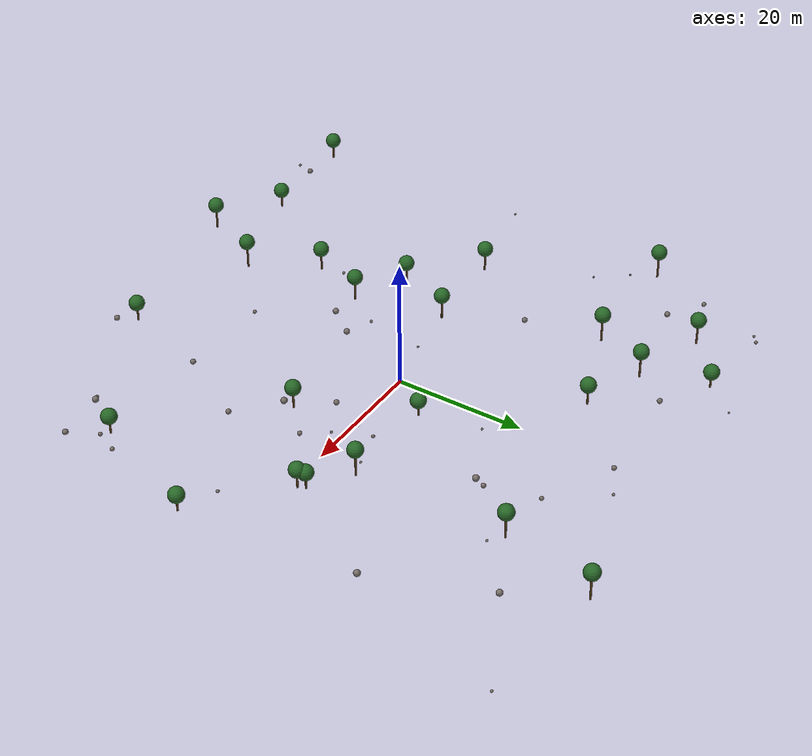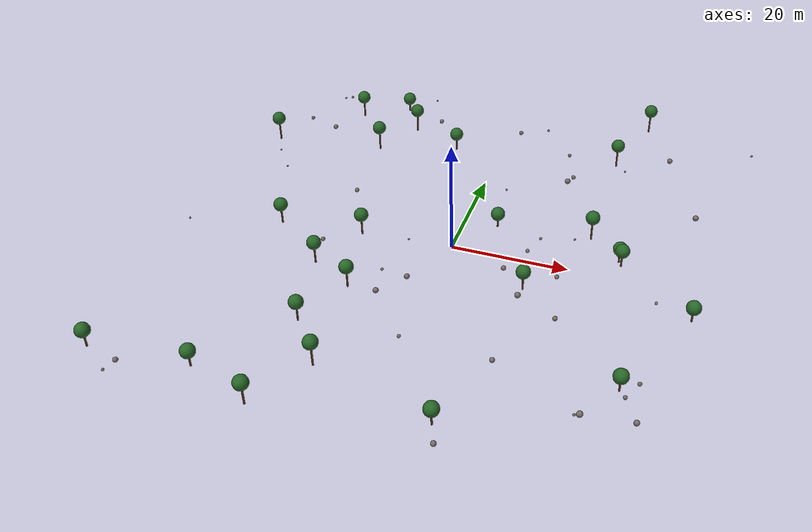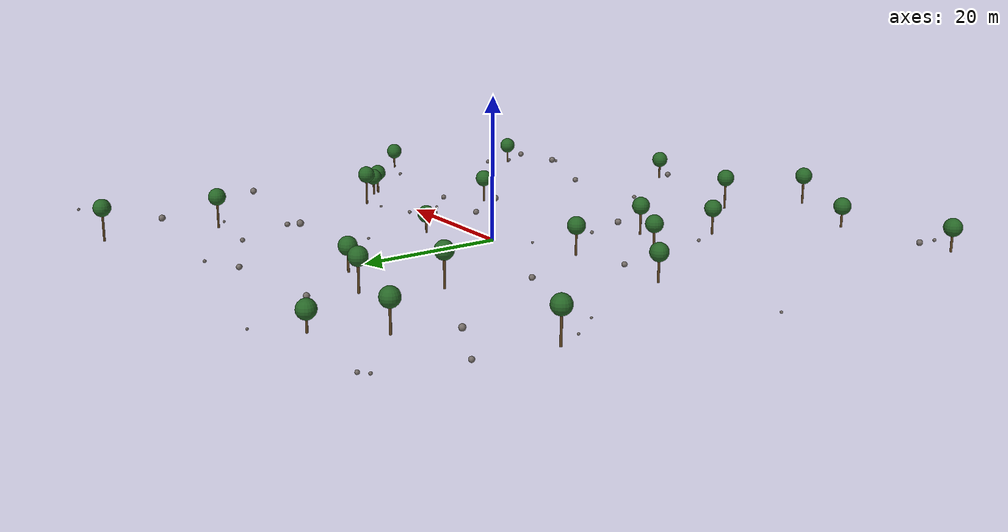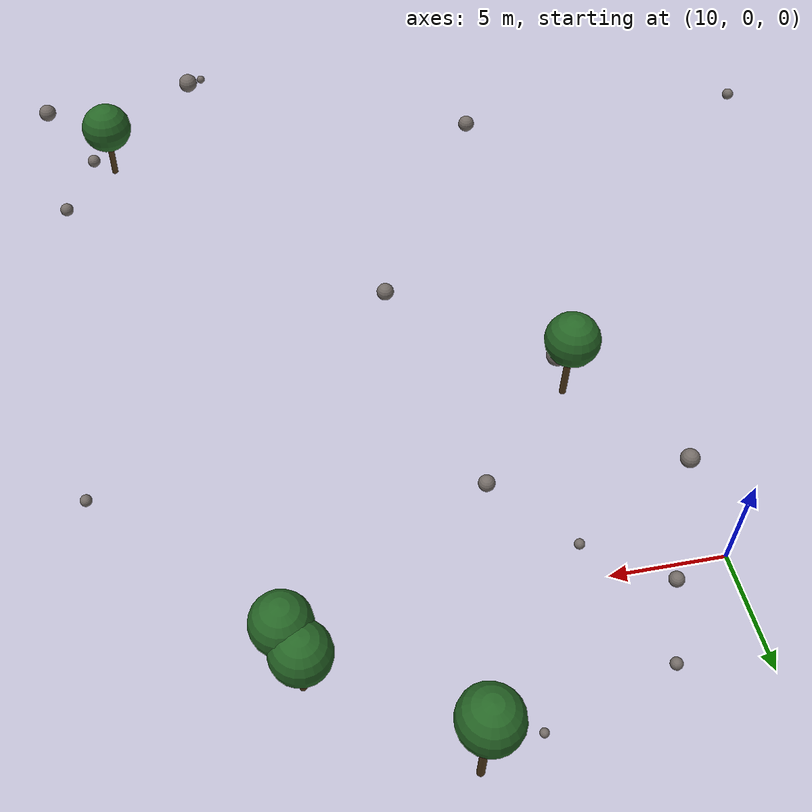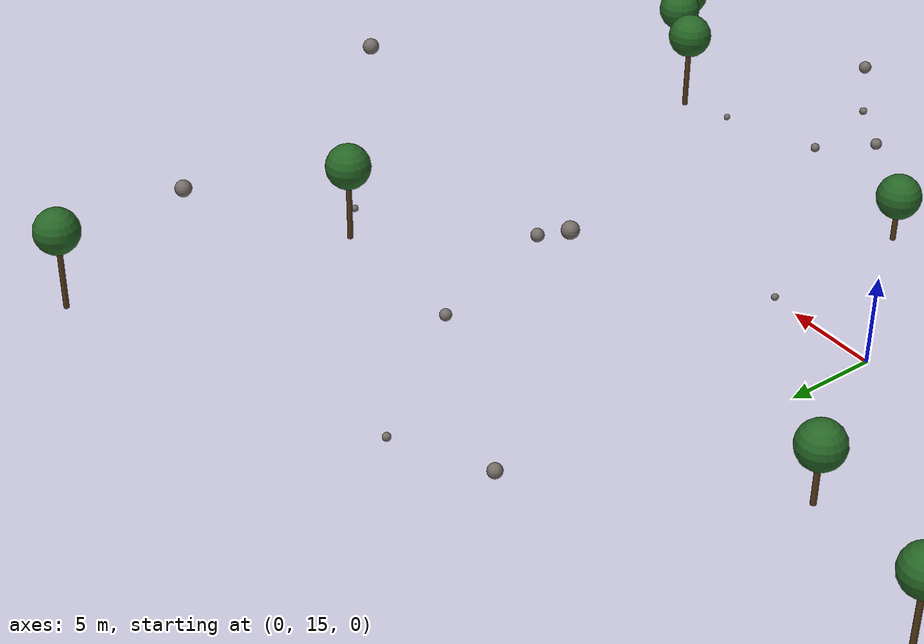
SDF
<sdf version="1.6">
 <world name="rough_terrain">
  <physics name="1ms" type="ignored">
   <max_step_size>0.004</max_step_size>
   <real_time_factor>1</real_time_factor>
  </physics>
  <plugin filename="ignition-gazebo-physics-system" name="ignition::gazebo::systems::Physics"/>
  <plugin filename="ignition-gazebo-user-commands-system" name="ignition::gazebo::systems::UserCommands"/>
  <plugin filename="ignition-gazebo-scene-broadcaster-system" name="ignition::gazebo::systems::SceneBroadcaster"/>
  <plugin filename="ignition-gazebo-sensors-system" name="ignition::gazebo::systems::Sensors">
   <render_engine>ogre2</render_engine>
  </plugin>
  <plugin filename="ignition-gazebo-navsat-system" name="ignition::gazebo::systems::NavSat"/>
  <spherical_coordinates>
   <surface_model>EARTH_WGS84</surface_model>
   <world_frame_orientation>ENU</world_frame_orientation>
   <latitude_deg>47.3977</latitude_deg>
   <longitude_deg>8.5456</longitude_deg>
   <elevation>0</elevation>
   <heading_deg>0</heading_deg>
  </spherical_coordinates>
  <plugin filename="ignition-gazebo-contact-system" name="ignition::gazebo::systems::Contact"/>
  <plugin filename="ignition-gazebo-imu-system" name="ignition::gazebo::systems::Imu"/>
  <light type="directional" name="sun">
   <pose>0 0 10 0 0 0</pose>
   <diffuse>0.8 0.8 0.8 1</diffuse>
   <specular>0.2 0.2 0.2 1</specular>
   <direction>-0.5 0.1 -0.9</direction>
  </light>
  <model name="rock_0">
   <static>true</static>
   <pose>7.35 38.67 1.83 0 0 2.32</pose>
   <link name="l">
    <collision name="c"><geometry><sphere><radius>0.22</radius></sphere></geometry></collision>
    <visual name="v">
     <geometry><sphere><radius>0.22</radius></sphere></geometry>
     <material><ambient>0.4 0.38 0.35 1</ambient><diffuse>0.45 0.42 0.4 1</diffuse></material>
    </visual>
   </link>
  </model>
  <model name="rock_1">
   <static>true</static>
   <pose>-21.13 -5.58 0.91 0 0 0.29</pose>
   <link name="l">
    <collision name="c"><geometry><sphere><radius>0.37</radius></sphere></geometry></collision>
    <visual name="v">
     <geometry><sphere><radius>0.37</radius></sphere></geometry>
     <material><ambient>0.4 0.38 0.35 1</ambient><diffuse>0.45 0.42 0.4 1</diffuse></material>
    </visual>
   </link>
  </model>
  <model name="rock_2">
   <static>true</static>
   <pose>15.65 23.40 2.37 0 0 1.13</pose>
   <link name="l">
    <collision name="c"><geometry><sphere><radius>0.37</radius></sphere></geometry></collision>
    <visual name="v">
     <geometry><sphere><radius>0.37</radius></sphere></geometry>
     <material><ambient>0.4 0.38 0.35 1</ambient><diffuse>0.45 0.42 0.4 1</diffuse></material>
    </visual>
   </link>
  </model>
  <model name="rock_3">
   <static>true</static>
   <pose>19.71 6.34 1.58 0 0 1.69</pose>
   <link name="l">
    <collision name="c"><geometry><sphere><radius>0.18</radius></sphere></geometry></collision>
    <visual name="v">
     <geometry><sphere><radius>0.18</radius></sphere></geometry>
     <material><ambient>0.4 0.38 0.35 1</ambient><diffuse>0.45 0.42 0.4 1</diffuse></material>
    </visual>
   </link>
  </model>
  <model name="rock_4">
   <static>true</static>
   <pose>35.33 -6.15 1.95 0 0 2.49</pose>
   <link name="l">
    <collision name="c"><geometry><sphere><radius>0.25</radius></sphere></geometry></collision>
    <visual name="v">
     <geometry><sphere><radius>0.25</radius></sphere></geometry>
     <material><ambient>0.4 0.38 0.35 1</ambient><diffuse>0.45 0.42 0.4 1</diffuse></material>
    </visual>
   </link>
  </model>
  <model name="rock_5">
   <static>true</static>
   <pose>14.25 -10.37 1.56 0 0 1.57</pose>
   <link name="l">
    <collision name="c"><geometry><sphere><radius>0.50</radius></sphere></geometry></collision>
    <visual name="v">
     <geometry><sphere><radius>0.50</radius></sphere></geometry>
     <material><ambient>0.4 0.38 0.35 1</ambient><diffuse>0.45 0.42 0.4 1</diffuse></material>
    </visual>
   </link>
  </model>
  <model name="rock_6">
   <static>true</static>
   <pose>21.29 -14.85 2.40 0 0 0.68</pose>
   <link name="l">
    <collision name="c"><geometry><sphere><radius>0.40</radius></sphere></geometry></collision>
    <visual name="v">
     <geometry><sphere><radius>0.40</radius></sphere></geometry>
     <material><ambient>0.4 0.38 0.35 1</ambient><diffuse>0.45 0.42 0.4 1</diffuse></material>
    </visual>
   </link>
  </model>
  <model name="rock_7">
   <static>true</static>
   <pose>-8.44 -10.66 1.37 0 0 0.05</pose>
   <link name="l">
    <collision name="c"><geometry><sphere><radius>0.24</radius></sphere></geometry></collision>
    <visual name="v">
     <geometry><sphere><radius>0.24</radius></sphere></geometry>
     <material><ambient>0.4 0.38 0.35 1</ambient><diffuse>0.45 0.42 0.4 1</diffuse></material>
    </visual>
   </link>
  </model>
  <model name="rock_8">
   <static>true</static>
   <pose>-38.28 -44.66 1.79 0 0 0.96</pose>
   <link name="l">
    <collision name="c"><geometry><sphere><radius>0.23</radius></sphere></geometry></collision>
    <visual name="v">
     <geometry><sphere><radius>0.23</radius></sphere></geometry>
     <material><ambient>0.4 0.38 0.35 1</ambient><diffuse>0.45 0.42 0.4 1</diffuse></material>
    </visual>
   </link>
  </model>
  <model name="rock_9">
   <static>true</static>
   <pose>19.11 -4.23 1.62 0 0 2.45</pose>
   <link name="l">
    <collision name="c"><geometry><sphere><radius>0.36</radius></sphere></geometry></collision>
    <visual name="v">
     <geometry><sphere><radius>0.36</radius></sphere></geometry>
     <material><ambient>0.4 0.38 0.35 1</ambient><diffuse>0.45 0.42 0.4 1</diffuse></material>
    </visual>
   </link>
  </model>
  <model name="rock_10">
   <static>true</static>
   <pose>14.66 -26.18 2.27 0 0 1.75</pose>
   <link name="l">
    <collision name="c"><geometry><sphere><radius>0.41</radius></sphere></geometry></collision>
    <visual name="v">
     <geometry><sphere><radius>0.41</radius></sphere></geometry>
     <material><ambient>0.4 0.38 0.35 1</ambient><diffuse>0.45 0.42 0.4 1</diffuse></material>
    </visual>
   </link>
  </model>
  <model name="rock_11">
   <static>true</static>
   <pose>38.37 18.31 1.80 0 0 0.53</pose>
   <link name="l">
    <collision name="c"><geometry><sphere><radius>0.49</radius></sphere></geometry></collision>
    <visual name="v">
     <geometry><sphere><radius>0.49</radius></sphere></geometry>
     <material><ambient>0.4 0.38 0.35 1</ambient><diffuse>0.45 0.42 0.4 1</diffuse></material>
    </visual>
   </link>
  </model>
  <model name="rock_12">
   <static>true</static>
   <pose>13.27 31.02 1.94 0 0 1.60</pose>
   <link name="l">
    <collision name="c"><geometry><sphere><radius>0.32</radius></sphere></geometry></collision>
    <visual name="v">
     <geometry><sphere><radius>0.32</radius></sphere></geometry>
     <material><ambient>0.4 0.38 0.35 1</ambient><diffuse>0.45 0.42 0.4 1</diffuse></material>
    </visual>
   </link>
  </model>
  <model name="rock_13">
   <static>true</static>
   <pose>34.32 -27.23 1.85 0 0 1.09</pose>
   <link name="l">
    <collision name="c"><geometry><sphere><radius>0.32</radius></sphere></geometry></collision>
    <visual name="v">
     <geometry><sphere><radius>0.32</radius></sphere></geometry>
     <material><ambient>0.4 0.38 0.35 1</ambient><diffuse>0.45 0.42 0.4 1</diffuse></material>
    </visual>
   </link>
  </model>
  <model name="rock_14">
   <static>true</static>
   <pose>31.48 35.37 1.58 0 0 3.10</pose>
   <link name="l">
    <collision name="c"><geometry><sphere><radius>0.48</radius></sphere></geometry></collision>
    <visual name="v">
     <geometry><sphere><radius>0.48</radius></sphere></geometry>
     <material><ambient>0.4 0.38 0.35 1</ambient><diffuse>0.45 0.42 0.4 1</diffuse></material>
    </visual>
   </link>
  </model>
  <model name="rock_15">
   <static>true</static>
   <pose>45.96 42.89 0.86 0 0 1.22</pose>
   <link name="l">
    <collision name="c"><geometry><sphere><radius>0.21</radius></sphere></geometry></collision>
    <visual name="v">
     <geometry><sphere><radius>0.21</radius></sphere></geometry>
     <material><ambient>0.4 0.38 0.35 1</ambient><diffuse>0.45 0.42 0.4 1</diffuse></material>
    </visual>
   </link>
  </model>
  <model name="rock_16">
   <static>true</static>
   <pose>16.06 -1.03 1.16 0 0 1.13</pose>
   <link name="l">
    <collision name="c"><geometry><sphere><radius>0.22</radius></sphere></geometry></collision>
    <visual name="v">
     <geometry><sphere><radius>0.22</radius></sphere></geometry>
     <material><ambient>0.4 0.38 0.35 1</ambient><diffuse>0.45 0.42 0.4 1</diffuse></material>
    </visual>
   </link>
  </model>
  <model name="rock_17">
   <static>true</static>
   <pose>-39.36 16.48 1.83 0 0 0.30</pose>
   <link name="l">
    <collision name="c"><geometry><sphere><radius>0.16</radius></sphere></geometry></collision>
    <visual name="v">
     <geometry><sphere><radius>0.16</radius></sphere></geometry>
     <material><ambient>0.4 0.38 0.35 1</ambient><diffuse>0.45 0.42 0.4 1</diffuse></material>
    </visual>
   </link>
  </model>
  <model name="rock_18">
   <static>true</static>
   <pose>2.50 36.15 1.88 0 0 1.61</pose>
   <link name="l">
    <collision name="c"><geometry><sphere><radius>0.38</radius></sphere></geometry></collision>
    <visual name="v">
     <geometry><sphere><radius>0.38</radius></sphere></geometry>
     <material><ambient>0.4 0.38 0.35 1</ambient><diffuse>0.45 0.42 0.4 1</diffuse></material>
    </visual>
   </link>
  </model>
  <model name="rock_19">
   <static>true</static>
   <pose>35.80 -23.90 1.71 0 0 2.06</pose>
   <link name="l">
    <collision name="c"><geometry><sphere><radius>0.32</radius></sphere></geometry></collision>
    <visual name="v">
     <geometry><sphere><radius>0.32</radius></sphere></geometry>
     <material><ambient>0.4 0.38 0.35 1</ambient><diffuse>0.45 0.42 0.4 1</diffuse></material>
    </visual>
   </link>
  </model>
  <model name="rock_20">
   <static>true</static>
   <pose>-7.33 -16.28 1.75 0 0 0.91</pose>
   <link name="l">
    <collision name="c"><geometry><sphere><radius>0.46</radius></sphere></geometry></collision>
    <visual name="v">
     <geometry><sphere><radius>0.46</radius></sphere></geometry>
     <material><ambient>0.4 0.38 0.35 1</ambient><diffuse>0.45 0.42 0.4 1</diffuse></material>
    </visual>
   </link>
  </model>
  <model name="rock_21">
   <static>true</static>
   <pose>14.22 4.74 1.66 0 0 2.84</pose>
   <link name="l">
    <collision name="c"><geometry><sphere><radius>0.25</radius></sphere></geometry></collision>
    <visual name="v">
     <geometry><sphere><radius>0.25</radius></sphere></geometry>
     <material><ambient>0.4 0.38 0.35 1</ambient><diffuse>0.45 0.42 0.4 1</diffuse></material>
    </visual>
   </link>
  </model>
  <model name="rock_22">
   <static>true</static>
   <pose>28.21 -32.79 2.11 0 0 2.61</pose>
   <link name="l">
    <collision name="c"><geometry><sphere><radius>0.21</radius></sphere></geometry></collision>
    <visual name="v">
     <geometry><sphere><radius>0.21</radius></sphere></geometry>
     <material><ambient>0.4 0.38 0.35 1</ambient><diffuse>0.45 0.42 0.4 1</diffuse></material>
    </visual>
   </link>
  </model>
  <model name="rock_23">
   <static>true</static>
   <pose>-35.62 39.11 1.42 0 0 2.00</pose>
   <link name="l">
    <collision name="c"><geometry><sphere><radius>0.20</radius></sphere></geometry></collision>
    <visual name="v">
     <geometry><sphere><radius>0.20</radius></sphere></geometry>
     <material><ambient>0.4 0.38 0.35 1</ambient><diffuse>0.45 0.42 0.4 1</diffuse></material>
    </visual>
   </link>
  </model>
  <model name="rock_24">
   <static>true</static>
   <pose>4.93 16.71 1.80 0 0 1.97</pose>
   <link name="l">
    <collision name="c"><geometry><sphere><radius>0.19</radius></sphere></geometry></collision>
    <visual name="v">
     <geometry><sphere><radius>0.19</radius></sphere></geometry>
     <material><ambient>0.4 0.38 0.35 1</ambient><diffuse>0.45 0.42 0.4 1</diffuse></material>
    </visual>
   </link>
  </model>
  <model name="rock_25">
   <static>true</static>
   <pose>10.22 -4.15 1.21 0 0 0.82</pose>
   <link name="l">
    <collision name="c"><geometry><sphere><radius>0.42</radius></sphere></geometry></collision>
    <visual name="v">
     <geometry><sphere><radius>0.42</radius></sphere></geometry>
     <material><ambient>0.4 0.38 0.35 1</ambient><diffuse>0.45 0.42 0.4 1</diffuse></material>
    </visual>
   </link>
  </model>
  <model name="rock_26">
   <static>true</static>
   <pose>-45.43 -7.45 1.20 0 0 0.49</pose>
   <link name="l">
    <collision name="c"><geometry><sphere><radius>0.17</radius></sphere></geometry></collision>
    <visual name="v">
     <geometry><sphere><radius>0.17</radius></sphere></geometry>
     <material><ambient>0.4 0.38 0.35 1</ambient><diffuse>0.45 0.42 0.4 1</diffuse></material>
    </visual>
   </link>
  </model>
  <model name="rock_27">
   <static>true</static>
   <pose>14.94 21.79 2.43 0 0 0.56</pose>
   <link name="l">
    <collision name="c"><geometry><sphere><radius>0.50</radius></sphere></geometry></collision>
    <visual name="v">
     <geometry><sphere><radius>0.50</radius></sphere></geometry>
     <material><ambient>0.4 0.38 0.35 1</ambient><diffuse>0.45 0.42 0.4 1</diffuse></material>
    </visual>
   </link>
  </model>
  <model name="rock_28">
   <static>true</static>
   <pose>-17.62 -21.89 0.58 0 0 1.75</pose>
   <link name="l">
    <collision name="c"><geometry><sphere><radius>0.24</radius></sphere></geometry></collision>
    <visual name="v">
     <geometry><sphere><radius>0.24</radius></sphere></geometry>
     <material><ambient>0.4 0.38 0.35 1</ambient><diffuse>0.45 0.42 0.4 1</diffuse></material>
    </visual>
   </link>
  </model>
  <model name="rock_29">
   <static>true</static>
   <pose>-20.71 8.65 1.65 0 0 0.22</pose>
   <link name="l">
    <collision name="c"><geometry><sphere><radius>0.40</radius></sphere></geometry></collision>
    <visual name="v">
     <geometry><sphere><radius>0.40</radius></sphere></geometry>
     <material><ambient>0.4 0.38 0.35 1</ambient><diffuse>0.45 0.42 0.4 1</diffuse></material>
    </visual>
   </link>
  </model>
  <model name="rock_30">
   <static>true</static>
   <pose>-7.14 -1.53 1.13 0 0 0.08</pose>
   <link name="l">
    <collision name="c"><geometry><sphere><radius>0.17</radius></sphere></geometry></collision>
    <visual name="v">
     <geometry><sphere><radius>0.17</radius></sphere></geometry>
     <material><ambient>0.4 0.38 0.35 1</ambient><diffuse>0.45 0.42 0.4 1</diffuse></material>
    </visual>
   </link>
  </model>
  <model name="rock_31">
   <static>true</static>
   <pose>-17.28 43.83 1.39 0 0 2.57</pose>
   <link name="l">
    <collision name="c"><geometry><sphere><radius>0.16</radius></sphere></geometry></collision>
    <visual name="v">
     <geometry><sphere><radius>0.16</radius></sphere></geometry>
     <material><ambient>0.4 0.38 0.35 1</ambient><diffuse>0.45 0.42 0.4 1</diffuse></material>
    </visual>
   </link>
  </model>
  <model name="rock_32">
   <static>true</static>
   <pose>24.14 29.08 1.73 0 0 1.19</pose>
   <link name="l">
    <collision name="c"><geometry><sphere><radius>0.19</radius></sphere></geometry></collision>
    <visual name="v">
     <geometry><sphere><radius>0.19</radius></sphere></geometry>
     <material><ambient>0.4 0.38 0.35 1</ambient><diffuse>0.45 0.42 0.4 1</diffuse></material>
    </visual>
   </link>
  </model>
  <model name="rock_33">
   <static>true</static>
   <pose>-37.75 -42.26 1.71 0 0 2.65</pose>
   <link name="l">
    <collision name="c"><geometry><sphere><radius>0.42</radius></sphere></geometry></collision>
    <visual name="v">
     <geometry><sphere><radius>0.42</radius></sphere></geometry>
     <material><ambient>0.4 0.38 0.35 1</ambient><diffuse>0.45 0.42 0.4 1</diffuse></material>
    </visual>
   </link>
  </model>
  <model name="rock_34">
   <static>true</static>
   <pose>28.94 -32.50 2.18 0 0 2.61</pose>
   <link name="l">
    <collision name="c"><geometry><sphere><radius>0.49</radius></sphere></geometry></collision>
    <visual name="v">
     <geometry><sphere><radius>0.49</radius></sphere></geometry>
     <material><ambient>0.4 0.38 0.35 1</ambient><diffuse>0.45 0.42 0.4 1</diffuse></material>
    </visual>
   </link>
  </model>
  <model name="rock_35">
   <static>true</static>
   <pose>11.42 -43.01 1.55 0 0 2.57</pose>
   <link name="l">
    <collision name="c"><geometry><sphere><radius>0.43</radius></sphere></geometry></collision>
    <visual name="v">
     <geometry><sphere><radius>0.43</radius></sphere></geometry>
     <material><ambient>0.4 0.38 0.35 1</ambient><diffuse>0.45 0.42 0.4 1</diffuse></material>
    </visual>
   </link>
  </model>
  <model name="rock_36">
   <static>true</static>
   <pose>-32.37 26.37 2.49 0 0 0.94</pose>
   <link name="l">
    <collision name="c"><geometry><sphere><radius>0.42</radius></sphere></geometry></collision>
    <visual name="v">
     <geometry><sphere><radius>0.42</radius></sphere></geometry>
     <material><ambient>0.4 0.38 0.35 1</ambient><diffuse>0.45 0.42 0.4 1</diffuse></material>
    </visual>
   </link>
  </model>
  <model name="rock_37">
   <static>true</static>
   <pose>0.14 -25.79 2.49 0 0 2.58</pose>
   <link name="l">
    <collision name="c"><geometry><sphere><radius>0.29</radius></sphere></geometry></collision>
    <visual name="v">
     <geometry><sphere><radius>0.29</radius></sphere></geometry>
     <material><ambient>0.4 0.38 0.35 1</ambient><diffuse>0.45 0.42 0.4 1</diffuse></material>
    </visual>
   </link>
  </model>
  <model name="rock_38">
   <static>true</static>
   <pose>-13.39 34.88 2.31 0 0 2.15</pose>
   <link name="l">
    <collision name="c"><geometry><sphere><radius>0.40</radius></sphere></geometry></collision>
    <visual name="v">
     <geometry><sphere><radius>0.40</radius></sphere></geometry>
     <material><ambient>0.4 0.38 0.35 1</ambient><diffuse>0.45 0.42 0.4 1</diffuse></material>
    </visual>
   </link>
  </model>
  <model name="rock_39">
   <static>true</static>
   <pose>36.64 -31.53 1.97 0 0 0.61</pose>
   <link name="l">
    <collision name="c"><geometry><sphere><radius>0.44</radius></sphere></geometry></collision>
    <visual name="v">
     <geometry><sphere><radius>0.44</radius></sphere></geometry>
     <material><ambient>0.4 0.38 0.35 1</ambient><diffuse>0.45 0.42 0.4 1</diffuse></material>
    </visual>
   </link>
  </model>
  <model name="rock_40">
   <static>true</static>
   <pose>-34.49 39.95 1.36 0 0 2.13</pose>
   <link name="l">
    <collision name="c"><geometry><sphere><radius>0.26</radius></sphere></geometry></collision>
    <visual name="v">
     <geometry><sphere><radius>0.26</radius></sphere></geometry>
     <material><ambient>0.4 0.38 0.35 1</ambient><diffuse>0.45 0.42 0.4 1</diffuse></material>
    </visual>
   </link>
  </model>
  <model name="rock_41">
   <static>true</static>
   <pose>-3.71 -11.82 1.99 0 0 0.45</pose>
   <link name="l">
    <collision name="c"><geometry><sphere><radius>0.46</radius></sphere></geometry></collision>
    <visual name="v">
     <geometry><sphere><radius>0.46</radius></sphere></geometry>
     <material><ambient>0.4 0.38 0.35 1</ambient><diffuse>0.45 0.42 0.4 1</diffuse></material>
    </visual>
   </link>
  </model>
  <model name="rock_42">
   <static>true</static>
   <pose>-35.97 11.99 1.70 0 0 0.40</pose>
   <link name="l">
    <collision name="c"><geometry><sphere><radius>0.16</radius></sphere></geometry></collision>
    <visual name="v">
     <geometry><sphere><radius>0.16</radius></sphere></geometry>
     <material><ambient>0.4 0.38 0.35 1</ambient><diffuse>0.45 0.42 0.4 1</diffuse></material>
    </visual>
   </link>
  </model>
  <model name="rock_43">
   <static>true</static>
   <pose>12.85 1.26 1.32 0 0 2.77</pose>
   <link name="l">
    <collision name="c"><geometry><sphere><radius>0.32</radius></sphere></geometry></collision>
    <visual name="v">
     <geometry><sphere><radius>0.32</radius></sphere></geometry>
     <material><ambient>0.4 0.38 0.35 1</ambient><diffuse>0.45 0.42 0.4 1</diffuse></material>
    </visual>
   </link>
  </model>
  <model name="rock_44">
   <static>true</static>
   <pose>-38.64 29.41 1.67 0 0 2.93</pose>
   <link name="l">
    <collision name="c"><geometry><sphere><radius>0.34</radius></sphere></geometry></collision>
    <visual name="v">
     <geometry><sphere><radius>0.34</radius></sphere></geometry>
     <material><ambient>0.4 0.38 0.35 1</ambient><diffuse>0.45 0.42 0.4 1</diffuse></material>
    </visual>
   </link>
  </model>
  <model name="tree_45">
   <static>true</static>
   <pose>27.84 2.98 1.29 0 0 0</pose>
   <link name="l">
    <collision name="c">
     <pose>0 0 1.08 0 0 0</pose>
     <geometry><cylinder><radius>0.15</radius><length>2.16</length></cylinder></geometry>
    </collision>
    <visual name="t">
     <pose>0 0 1.08 0 0 0</pose>
     <geometry><cylinder><radius>0.15</radius><length>2.16</length></cylinder></geometry>
     <material><ambient>0.3 0.2 0.1 1</ambient><diffuse>0.35 0.25 0.12 1</diffuse></material>
    </visual>
    <visual name="canopy">
     <pose>0 0 2.76 0 0 0</pose>
     <geometry><sphere><radius>1.2</radius></sphere></geometry>
     <material><ambient>0.1 0.3 0.1 1</ambient><diffuse>0.15 0.4 0.15 1</diffuse></material>
    </visual>
   </link>
  </model>
  <model name="tree_46">
   <static>true</static>
   <pose>10.13 -39.95 1.62 0 0 0</pose>
   <link name="l">
    <collision name="c">
     <pose>0 0 1.23 0 0 0</pose>
     <geometry><cylinder><radius>0.15</radius><length>2.46</length></cylinder></geometry>
    </collision>
    <visual name="t">
     <pose>0 0 1.23 0 0 0</pose>
     <geometry><cylinder><radius>0.15</radius><length>2.46</length></cylinder></geometry>
     <material><ambient>0.3 0.2 0.1 1</ambient><diffuse>0.35 0.25 0.12 1</diffuse></material>
    </visual>
    <visual name="canopy">
     <pose>0 0 3.06 0 0 0</pose>
     <geometry><sphere><radius>1.2</radius></sphere></geometry>
     <material><ambient>0.1 0.3 0.1 1</ambient><diffuse>0.15 0.4 0.15 1</diffuse></material>
    </visual>
   </link>
  </model>
  <model name="tree_47">
   <static>true</static>
   <pose>22.17 30.70 1.56 0 0 0</pose>
   <link name="l">
    <collision name="c">
     <pose>0 0 1.89 0 0 0</pose>
     <geometry><cylinder><radius>0.15</radius><length>3.78</length></cylinder></geometry>
    </collision>
    <visual name="t">
     <pose>0 0 1.89 0 0 0</pose>
     <geometry><cylinder><radius>0.15</radius><length>3.78</length></cylinder></geometry>
     <material><ambient>0.3 0.2 0.1 1</ambient><diffuse>0.35 0.25 0.12 1</diffuse></material>
    </visual>
    <visual name="canopy">
     <pose>0 0 4.38 0 0 0</pose>
     <geometry><sphere><radius>1.2</radius></sphere></geometry>
     <material><ambient>0.1 0.3 0.1 1</ambient><diffuse>0.15 0.4 0.15 1</diffuse></material>
    </visual>
   </link>
  </model>
  <model name="tree_48">
   <static>true</static>
   <pose>28.37 1.95 1.33 0 0 0</pose>
   <link name="l">
    <collision name="c">
     <pose>0 0 1.26 0 0 0</pose>
     <geometry><cylinder><radius>0.15</radius><length>2.53</length></cylinder></geometry>
    </collision>
    <visual name="t">
     <pose>0 0 1.26 0 0 0</pose>
     <geometry><cylinder><radius>0.15</radius><length>2.53</length></cylinder></geometry>
     <material><ambient>0.3 0.2 0.1 1</ambient><diffuse>0.35 0.25 0.12 1</diffuse></material>
    </visual>
    <visual name="canopy">
     <pose>0 0 3.13 0 0 0</pose>
     <geometry><sphere><radius>1.2</radius></sphere></geometry>
     <material><ambient>0.1 0.3 0.1 1</ambient><diffuse>0.15 0.4 0.15 1</diffuse></material>
    </visual>
   </link>
  </model>
  <model name="tree_49">
   <static>true</static>
   <pose>-9.94 -34.43 1.61 0 0 0</pose>
   <link name="l">
    <collision name="c">
     <pose>0 0 1.97 0 0 0</pose>
     <geometry><cylinder><radius>0.15</radius><length>3.95</length></cylinder></geometry>
    </collision>
    <visual name="t">
     <pose>0 0 1.97 0 0 0</pose>
     <geometry><cylinder><radius>0.15</radius><length>3.95</length></cylinder></geometry>
     <material><ambient>0.3 0.2 0.1 1</ambient><diffuse>0.35 0.25 0.12 1</diffuse></material>
    </visual>
    <visual name="canopy">
     <pose>0 0 4.55 0 0 0</pose>
     <geometry><sphere><radius>1.2</radius></sphere></geometry>
     <material><ambient>0.1 0.3 0.1 1</ambient><diffuse>0.15 0.4 0.15 1</diffuse></material>
    </visual>
   </link>
  </model>
  <model name="tree_50">
   <static>true</static>
   <pose>25.91 45.37 1.14 0 0 0</pose>
   <link name="l">
    <collision name="c">
     <pose>0 0 1.99 0 0 0</pose>
     <geometry><cylinder><radius>0.15</radius><length>3.98</length></cylinder></geometry>
    </collision>
    <visual name="t">
     <pose>0 0 1.99 0 0 0</pose>
     <geometry><cylinder><radius>0.15</radius><length>3.98</length></cylinder></geometry>
     <material><ambient>0.3 0.2 0.1 1</ambient><diffuse>0.35 0.25 0.12 1</diffuse></material>
    </visual>
    <visual name="canopy">
     <pose>0 0 4.58 0 0 0</pose>
     <geometry><sphere><radius>1.2</radius></sphere></geometry>
     <material><ambient>0.1 0.3 0.1 1</ambient><diffuse>0.15 0.4 0.15 1</diffuse></material>
    </visual>
   </link>
  </model>
  <model name="tree_51">
   <static>true</static>
   <pose>-21.47 38.87 1.18 0 0 0</pose>
   <link name="l">
    <collision name="c">
     <pose>0 0 1.03 0 0 0</pose>
     <geometry><cylinder><radius>0.15</radius><length>2.06</length></cylinder></geometry>
    </collision>
    <visual name="t">
     <pose>0 0 1.03 0 0 0</pose>
     <geometry><cylinder><radius>0.15</radius><length>2.06</length></cylinder></geometry>
     <material><ambient>0.3 0.2 0.1 1</ambient><diffuse>0.35 0.25 0.12 1</diffuse></material>
    </visual>
    <visual name="canopy">
     <pose>0 0 2.66 0 0 0</pose>
     <geometry><sphere><radius>1.2</radius></sphere></geometry>
     <material><ambient>0.1 0.3 0.1 1</ambient><diffuse>0.15 0.4 0.15 1</diffuse></material>
    </visual>
   </link>
  </model>
  <model name="tree_52">
   <static>true</static>
   <pose>-15.19 -2.48 1.14 0 0 0</pose>
   <link name="l">
    <collision name="c">
     <pose>0 0 1.70 0 0 0</pose>
     <geometry><cylinder><radius>0.15</radius><length>3.40</length></cylinder></geometry>
    </collision>
    <visual name="t">
     <pose>0 0 1.70 0 0 0</pose>
     <geometry><cylinder><radius>0.15</radius><length>3.40</length></cylinder></geometry>
     <material><ambient>0.3 0.2 0.1 1</ambient><diffuse>0.35 0.25 0.12 1</diffuse></material>
    </visual>
    <visual name="canopy">
     <pose>0 0 4.00 0 0 0</pose>
     <geometry><sphere><radius>1.2</radius></sphere></geometry>
     <material><ambient>0.1 0.3 0.1 1</ambient><diffuse>0.15 0.4 0.15 1</diffuse></material>
    </visual>
   </link>
  </model>
  <model name="tree_53">
   <static>true</static>
   <pose>-16.63 -25.33 0.68 0 0 0</pose>
   <link name="l">
    <collision name="c">
     <pose>0 0 1.54 0 0 0</pose>
     <geometry><cylinder><radius>0.15</radius><length>3.08</length></cylinder></geometry>
    </collision>
    <visual name="t">
     <pose>0 0 1.54 0 0 0</pose>
     <geometry><cylinder><radius>0.15</radius><length>3.08</length></cylinder></geometry>
     <material><ambient>0.3 0.2 0.1 1</ambient><diffuse>0.35 0.25 0.12 1</diffuse></material>
    </visual>
    <visual name="canopy">
     <pose>0 0 3.68 0 0 0</pose>
     <geometry><sphere><radius>1.2</radius></sphere></geometry>
     <material><ambient>0.1 0.3 0.1 1</ambient><diffuse>0.15 0.4 0.15 1</diffuse></material>
    </visual>
   </link>
  </model>
  <model name="tree_54">
   <static>true</static>
   <pose>-12.23 -16.05 1.09 0 0 0</pose>
   <link name="l">
    <collision name="c">
     <pose>0 0 1.73 0 0 0</pose>
     <geometry><cylinder><radius>0.15</radius><length>3.46</length></cylinder></geometry>
    </collision>
    <visual name="t">
     <pose>0 0 1.73 0 0 0</pose>
     <geometry><cylinder><radius>0.15</radius><length>3.46</length></cylinder></geometry>
     <material><ambient>0.3 0.2 0.1 1</ambient><diffuse>0.35 0.25 0.12 1</diffuse></material>
    </visual>
    <visual name="canopy">
     <pose>0 0 4.06 0 0 0</pose>
     <geometry><sphere><radius>1.2</radius></sphere></geometry>
     <material><ambient>0.1 0.3 0.1 1</ambient><diffuse>0.15 0.4 0.15 1</diffuse></material>
    </visual>
   </link>
  </model>
  <model name="tree_55">
   <static>true</static>
   <pose>-15.62 -44.64 2.07 0 0 0</pose>
   <link name="l">
    <collision name="c">
     <pose>0 0 1.77 0 0 0</pose>
     <geometry><cylinder><radius>0.15</radius><length>3.55</length></cylinder></geometry>
    </collision>
    <visual name="t">
     <pose>0 0 1.77 0 0 0</pose>
     <geometry><cylinder><radius>0.15</radius><length>3.55</length></cylinder></geometry>
     <material><ambient>0.3 0.2 0.1 1</ambient><diffuse>0.35 0.25 0.12 1</diffuse></material>
    </visual>
    <visual name="canopy">
     <pose>0 0 4.15 0 0 0</pose>
     <geometry><sphere><radius>1.2</radius></sphere></geometry>
     <material><ambient>0.1 0.3 0.1 1</ambient><diffuse>0.15 0.4 0.15 1</diffuse></material>
    </visual>
   </link>
  </model>
  <model name="tree_56">
   <static>true</static>
   <pose>-28.85 32.94 1.98 0 0 0</pose>
   <link name="l">
    <collision name="c">
     <pose>0 0 1.76 0 0 0</pose>
     <geometry><cylinder><radius>0.15</radius><length>3.52</length></cylinder></geometry>
    </collision>
    <visual name="t">
     <pose>0 0 1.76 0 0 0</pose>
     <geometry><cylinder><radius>0.15</radius><length>3.52</length></cylinder></geometry>
     <material><ambient>0.3 0.2 0.1 1</ambient><diffuse>0.35 0.25 0.12 1</diffuse></material>
    </visual>
    <visual name="canopy">
     <pose>0 0 4.12 0 0 0</pose>
     <geometry><sphere><radius>1.2</radius></sphere></geometry>
     <material><ambient>0.1 0.3 0.1 1</ambient><diffuse>0.15 0.4 0.15 1</diffuse></material>
    </visual>
   </link>
  </model>
  <model name="tree_57">
   <static>true</static>
   <pose>22.28 7.29 1.58 0 0 0</pose>
   <link name="l">
    <collision name="c">
     <pose>0 0 1.92 0 0 0</pose>
     <geometry><cylinder><radius>0.15</radius><length>3.84</length></cylinder></geometry>
    </collision>
    <visual name="t">
     <pose>0 0 1.92 0 0 0</pose>
     <geometry><cylinder><radius>0.15</radius><length>3.84</length></cylinder></geometry>
     <material><ambient>0.3 0.2 0.1 1</ambient><diffuse>0.35 0.25 0.12 1</diffuse></material>
    </visual>
    <visual name="canopy">
     <pose>0 0 4.44 0 0 0</pose>
     <geometry><sphere><radius>1.2</radius></sphere></geometry>
     <material><ambient>0.1 0.3 0.1 1</ambient><diffuse>0.15 0.4 0.15 1</diffuse></material>
    </visual>
   </link>
  </model>
  <model name="tree_58">
   <static>true</static>
   <pose>33.26 -26.21 1.82 0 0 0</pose>
   <link name="l">
    <collision name="c">
     <pose>0 0 1.15 0 0 0</pose>
     <geometry><cylinder><radius>0.15</radius><length>2.30</length></cylinder></geometry>
    </collision>
    <visual name="t">
     <pose>0 0 1.15 0 0 0</pose>
     <geometry><cylinder><radius>0.15</radius><length>2.30</length></cylinder></geometry>
     <material><ambient>0.3 0.2 0.1 1</ambient><diffuse>0.35 0.25 0.12 1</diffuse></material>
    </visual>
    <visual name="canopy">
     <pose>0 0 2.90 0 0 0</pose>
     <geometry><sphere><radius>1.2</radius></sphere></geometry>
     <material><ambient>0.1 0.3 0.1 1</ambient><diffuse>0.15 0.4 0.15 1</diffuse></material>
    </visual>
   </link>
  </model>
  <model name="tree_59">
   <static>true</static>
   <pose>41.06 -8.44 1.73 0 0 0</pose>
   <link name="l">
    <collision name="c">
     <pose>0 0 1.06 0 0 0</pose>
     <geometry><cylinder><radius>0.15</radius><length>2.13</length></cylinder></geometry>
    </collision>
    <visual name="t">
     <pose>0 0 1.06 0 0 0</pose>
     <geometry><cylinder><radius>0.15</radius><length>2.13</length></cylinder></geometry>
     <material><ambient>0.3 0.2 0.1 1</ambient><diffuse>0.35 0.25 0.12 1</diffuse></material>
    </visual>
    <visual name="canopy">
     <pose>0 0 2.73 0 0 0</pose>
     <geometry><sphere><radius>1.2</radius></sphere></geometry>
     <material><ambient>0.1 0.3 0.1 1</ambient><diffuse>0.15 0.4 0.15 1</diffuse></material>
    </visual>
   </link>
  </model>
  <model name="tree_60">
   <static>true</static>
   <pose>14.55 -8.49 1.32 0 0 0</pose>
   <link name="l">
    <collision name="c">
     <pose>0 0 1.47 0 0 0</pose>
     <geometry><cylinder><radius>0.15</radius><length>2.94</length></cylinder></geometry>
    </collision>
    <visual name="t">
     <pose>0 0 1.47 0 0 0</pose>
     <geometry><cylinder><radius>0.15</radius><length>2.94</length></cylinder></geometry>
     <material><ambient>0.3 0.2 0.1 1</ambient><diffuse>0.35 0.25 0.12 1</diffuse></material>
    </visual>
    <visual name="canopy">
     <pose>0 0 3.54 0 0 0</pose>
     <geometry><sphere><radius>1.2</radius></sphere></geometry>
     <material><ambient>0.1 0.3 0.1 1</ambient><diffuse>0.15 0.4 0.15 1</diffuse></material>
    </visual>
   </link>
  </model>
  <model name="tree_61">
   <static>true</static>
   <pose>-41.17 20.22 1.81 0 0 0</pose>
   <link name="l">
    <collision name="c">
     <pose>0 0 1.95 0 0 0</pose>
     <geometry><cylinder><radius>0.15</radius><length>3.90</length></cylinder></geometry>
    </collision>
    <visual name="t">
     <pose>0 0 1.95 0 0 0</pose>
     <geometry><cylinder><radius>0.15</radius><length>3.90</length></cylinder></geometry>
     <material><ambient>0.3 0.2 0.1 1</ambient><diffuse>0.35 0.25 0.12 1</diffuse></material>
    </visual>
    <visual name="canopy">
     <pose>0 0 4.50 0 0 0</pose>
     <geometry><sphere><radius>1.2</radius></sphere></geometry>
     <material><ambient>0.1 0.3 0.1 1</ambient><diffuse>0.15 0.4 0.15 1</diffuse></material>
    </visual>
   </link>
  </model>
  <model name="tree_62">
   <static>true</static>
   <pose>-16.61 29.94 2.54 0 0 0</pose>
   <link name="l">
    <collision name="c">
     <pose>0 0 1.89 0 0 0</pose>
     <geometry><cylinder><radius>0.15</radius><length>3.78</length></cylinder></geometry>
    </collision>
    <visual name="t">
     <pose>0 0 1.89 0 0 0</pose>
     <geometry><cylinder><radius>0.15</radius><length>3.78</length></cylinder></geometry>
     <material><ambient>0.3 0.2 0.1 1</ambient><diffuse>0.35 0.25 0.12 1</diffuse></material>
    </visual>
    <visual name="canopy">
     <pose>0 0 4.38 0 0 0</pose>
     <geometry><sphere><radius>1.2</radius></sphere></geometry>
     <material><ambient>0.1 0.3 0.1 1</ambient><diffuse>0.15 0.4 0.15 1</diffuse></material>
    </visual>
   </link>
  </model>
  <model name="tree_63">
   <static>true</static>
   <pose>-21.06 21.32 2.72 0 0 0</pose>
   <link name="l">
    <collision name="c">
     <pose>0 0 1.98 0 0 0</pose>
     <geometry><cylinder><radius>0.15</radius><length>3.96</length></cylinder></geometry>
    </collision>
    <visual name="t">
     <pose>0 0 1.98 0 0 0</pose>
     <geometry><cylinder><radius>0.15</radius><length>3.96</length></cylinder></geometry>
     <material><ambient>0.3 0.2 0.1 1</ambient><diffuse>0.35 0.25 0.12 1</diffuse></material>
    </visual>
    <visual name="canopy">
     <pose>0 0 4.56 0 0 0</pose>
     <geometry><sphere><radius>1.2</radius></sphere></geometry>
     <material><ambient>0.1 0.3 0.1 1</ambient><diffuse>0.15 0.4 0.15 1</diffuse></material>
    </visual>
   </link>
  </model>
  <model name="tree_64">
   <static>true</static>
   <pose>-29.53 -3.61 1.09 0 0 0</pose>
   <link name="l">
    <collision name="c">
     <pose>0 0 1.61 0 0 0</pose>
     <geometry><cylinder><radius>0.15</radius><length>3.22</length></cylinder></geometry>
    </collision>
    <visual name="t">
     <pose>0 0 1.61 0 0 0</pose>
     <geometry><cylinder><radius>0.15</radius><length>3.22</length></cylinder></geometry>
     <material><ambient>0.3 0.2 0.1 1</ambient><diffuse>0.35 0.25 0.12 1</diffuse></material>
    </visual>
    <visual name="canopy">
     <pose>0 0 3.82 0 0 0</pose>
     <geometry><sphere><radius>1.2</radius></sphere></geometry>
     <material><ambient>0.1 0.3 0.1 1</ambient><diffuse>0.15 0.4 0.15 1</diffuse></material>
    </visual>
   </link>
  </model>
  <model name="tree_65">
   <static>true</static>
   <pose>-19.75 -11.69 0.84 0 0 0</pose>
   <link name="l">
    <collision name="c">
     <pose>0 0 1.76 0 0 0</pose>
     <geometry><cylinder><radius>0.15</radius><length>3.52</length></cylinder></geometry>
    </collision>
    <visual name="t">
     <pose>0 0 1.76 0 0 0</pose>
     <geometry><cylinder><radius>0.15</radius><length>3.52</length></cylinder></geometry>
     <material><ambient>0.3 0.2 0.1 1</ambient><diffuse>0.35 0.25 0.12 1</diffuse></material>
    </visual>
    <visual name="canopy">
     <pose>0 0 4.12 0 0 0</pose>
     <geometry><sphere><radius>1.2</radius></sphere></geometry>
     <material><ambient>0.1 0.3 0.1 1</ambient><diffuse>0.15 0.4 0.15 1</diffuse></material>
    </visual>
   </link>
  </model>
  <model name="tree_66">
   <static>true</static>
   <pose>-43.14 -41.25 1.93 0 0 0</pose>
   <link name="l">
    <collision name="c">
     <pose>0 0 1.31 0 0 0</pose>
     <geometry><cylinder><radius>0.15</radius><length>2.62</length></cylinder></geometry>
    </collision>
    <visual name="t">
     <pose>0 0 1.31 0 0 0</pose>
     <geometry><cylinder><radius>0.15</radius><length>2.62</length></cylinder></geometry>
     <material><ambient>0.3 0.2 0.1 1</ambient><diffuse>0.35 0.25 0.12 1</diffuse></material>
    </visual>
    <visual name="canopy">
     <pose>0 0 3.22 0 0 0</pose>
     <geometry><sphere><radius>1.2</radius></sphere></geometry>
     <material><ambient>0.1 0.3 0.1 1</ambient><diffuse>0.15 0.4 0.15 1</diffuse></material>
    </visual>
   </link>
  </model>
  <model name="tree_67">
   <static>true</static>
   <pose>-26.67 -40.00 1.68 0 0 0</pose>
   <link name="l">
    <collision name="c">
     <pose>0 0 1.18 0 0 0</pose>
     <geometry><cylinder><radius>0.15</radius><length>2.37</length></cylinder></geometry>
    </collision>
    <visual name="t">
     <pose>0 0 1.18 0 0 0</pose>
     <geometry><cylinder><radius>0.15</radius><length>2.37</length></cylinder></geometry>
     <material><ambient>0.3 0.2 0.1 1</ambient><diffuse>0.35 0.25 0.12 1</diffuse></material>
    </visual>
    <visual name="canopy">
     <pose>0 0 2.97 0 0 0</pose>
     <geometry><sphere><radius>1.2</radius></sphere></geometry>
     <material><ambient>0.1 0.3 0.1 1</ambient><diffuse>0.15 0.4 0.15 1</diffuse></material>
    </visual>
   </link>
  </model>
  <model name="tree_68">
   <static>true</static>
   <pose>6.07 6.95 0.81 0 0 0</pose>
   <link name="l">
    <collision name="c">
     <pose>0 0 1.03 0 0 0</pose>
     <geometry><cylinder><radius>0.15</radius><length>2.06</length></cylinder></geometry>
    </collision>
    <visual name="t">
     <pose>0 0 1.03 0 0 0</pose>
     <geometry><cylinder><radius>0.15</radius><length>2.06</length></cylinder></geometry>
     <material><ambient>0.3 0.2 0.1 1</ambient><diffuse>0.35 0.25 0.12 1</diffuse></material>
    </visual>
    <visual name="canopy">
     <pose>0 0 2.66 0 0 0</pose>
     <geometry><sphere><radius>1.2</radius></sphere></geometry>
     <material><ambient>0.1 0.3 0.1 1</ambient><diffuse>0.15 0.4 0.15 1</diffuse></material>
    </visual>
   </link>
  </model>
  <model name="tree_69">
   <static>true</static>
   <pose>-7.61 26.44 2.07 0 0 0</pose>
   <link name="l">
    <collision name="c">
     <pose>0 0 1.37 0 0 0</pose>
     <geometry><cylinder><radius>0.15</radius><length>2.73</length></cylinder></geometry>
    </collision>
    <visual name="t">
     <pose>0 0 1.37 0 0 0</pose>
     <geometry><cylinder><radius>0.15</radius><length>2.73</length></cylinder></geometry>
     <material><ambient>0.3 0.2 0.1 1</ambient><diffuse>0.35 0.25 0.12 1</diffuse></material>
    </visual>
    <visual name="canopy">
     <pose>0 0 3.33 0 0 0</pose>
     <geometry><sphere><radius>1.2</radius></sphere></geometry>
     <material><ambient>0.1 0.3 0.1 1</ambient><diffuse>0.15 0.4 0.15 1</diffuse></material>
    </visual>
   </link>
  </model>
  <model name="world_monitor_cam">
   <static>true</static>
   <pose>56.0 0 28.0 0 0.75 3.14159</pose>
   <link name="link">
    <sensor name="monitor_camera" type="camera">
     <always_on>true</always_on>
     <update_rate>10</update_rate>
     <topic>world_monitor/image_raw</topic>
     <camera>
      <horizontal_fov>1.3</horizontal_fov>
      <image><width>960</width><height>540</height><format>R8G8B8</format></image>
      <clip><near>0.05</near><far>80.0</far></clip>
     </camera>
    </sensor>
   </link>
  </model>
 </world>
</sdf>
